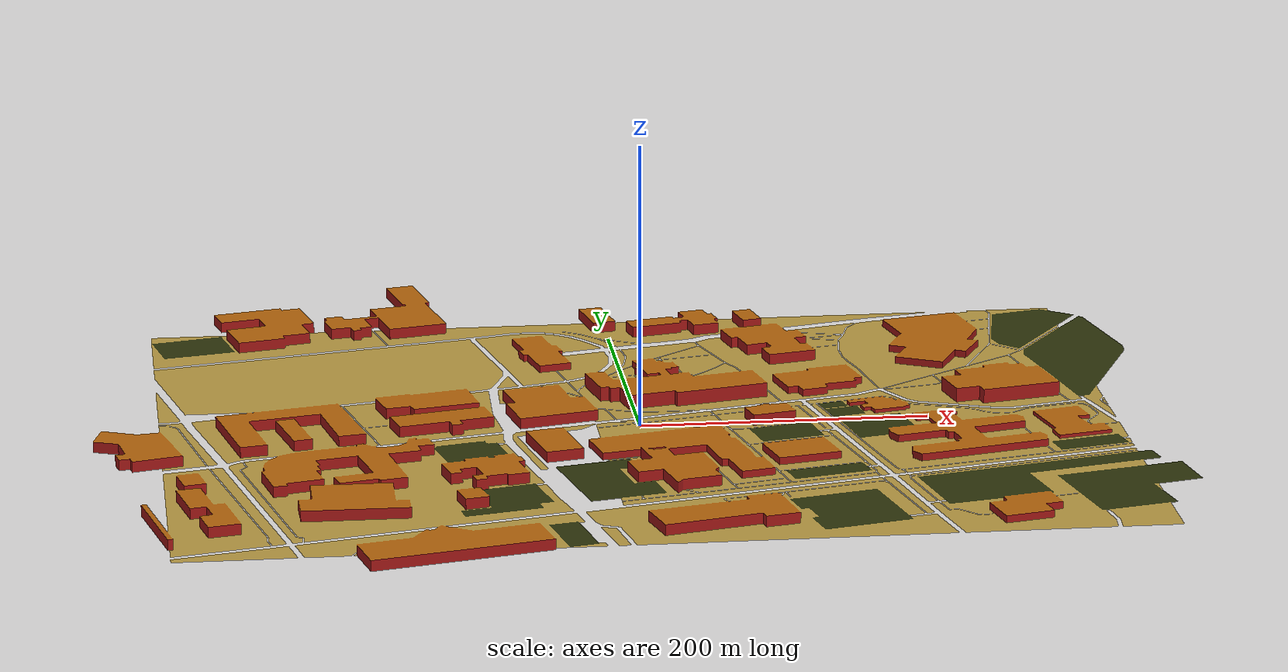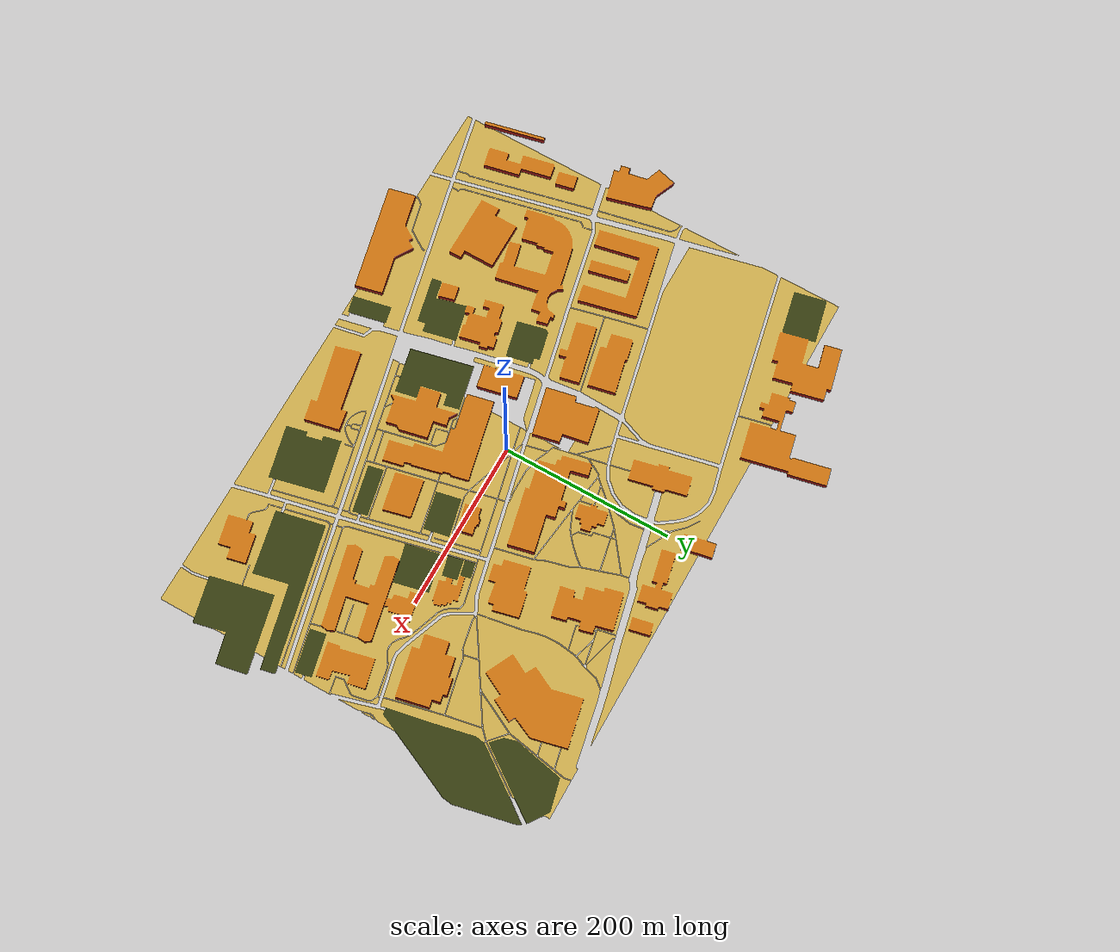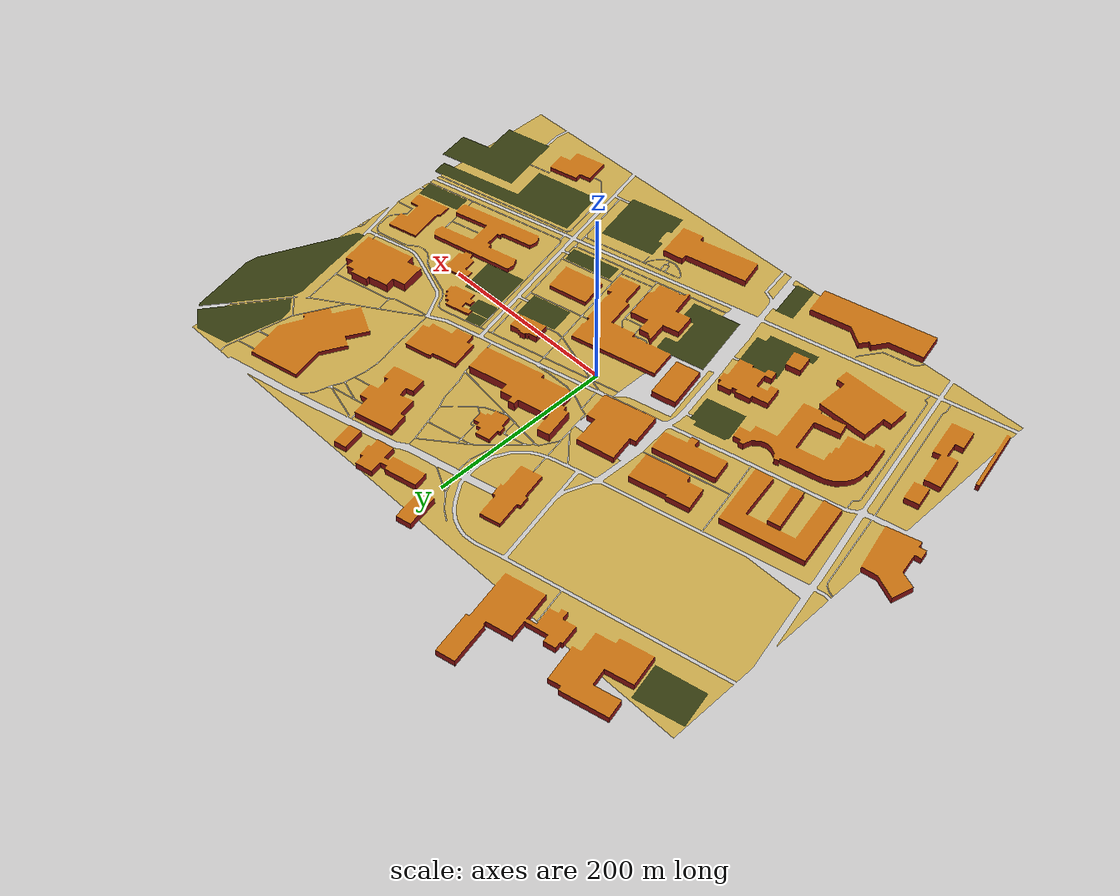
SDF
<sdf version="1.6">
 <world name="default">
  <light name="sun" type="directional">
   <pose>0 0 10 0 -0 0</pose>
   <diffuse>0.8 0.8 0.8 1</diffuse>
   <specular>0.1 0.1 0.1 1</specular>
   <attenuation>
    <range>1000</range>
    <constant>0.9</constant>
    <linear>0.01</linear>
    <quadratic>0.001</quadratic>
   </attenuation>
   <direction>-0.5 0.5 -1</direction>
  </light>
  <gravity>0 0 -9.8</gravity>
  <magnetic_field>6e-06 2.3e-05 -4.2e-05</magnetic_field>
  <atmosphere type="adiabatic"/>
  <physics name="default_physics" default="0" type="ode">
   <max_step_size>0.001</max_step_size>
   <real_time_factor>1</real_time_factor>
   <real_time_update_rate>1000</real_time_update_rate>
  </physics>
  <scene><ambient>0.4 0.4 0.4 1</ambient><background>0.7 0.7 0.7 1</background><shadows>1</shadows></scene>
  <spherical_coordinates>
   <surface_model>EARTH_WGS84</surface_model>
   <latitude_deg>0</latitude_deg>
   <longitude_deg>0</longitude_deg>
   <elevation>0</elevation>
   <heading_deg>0</heading_deg>
  </spherical_coordinates>
  <model name="nmsu_trimmed">
   <static>1</static>
   <link name="link">
    <collision name="collision">
     <geometry>
      <mesh><uri>model://nmsu_trimmed_osm/meshes/nmsu_trimmed_osm.dae</uri><scale>1 1 1</scale></mesh>
     </geometry>
    </collision>
    <visual name="visual">
     <geometry>
      <mesh><uri>model://nmsu_trimmed_osm/meshes/nmsu_trimmed_osm.dae</uri><scale>1 1 1</scale></mesh>
     </geometry>
    </visual>
   </link>
  </model>
 </world>
</sdf>
